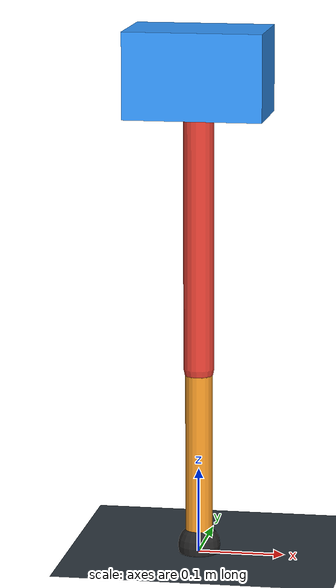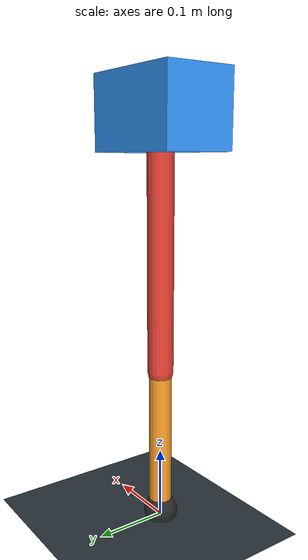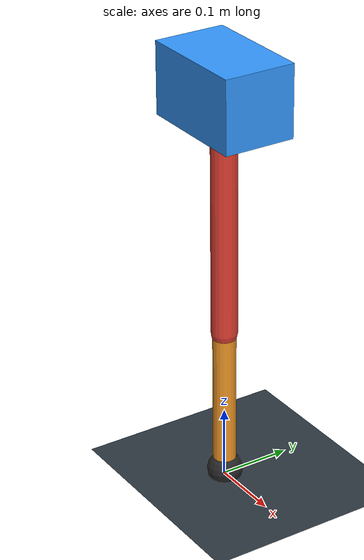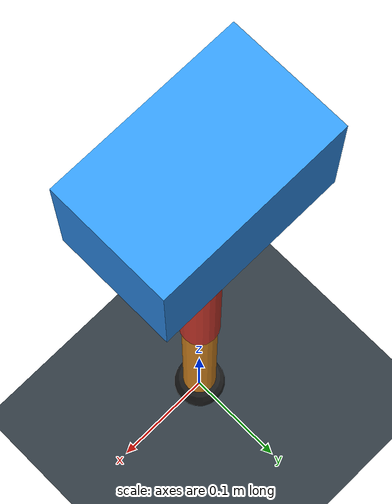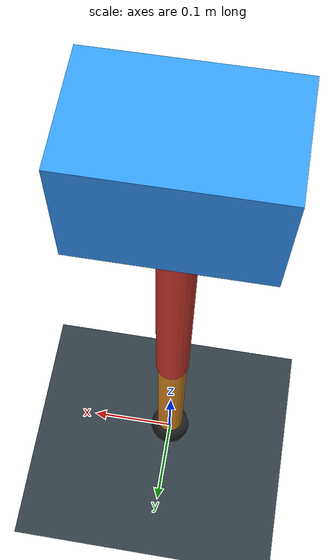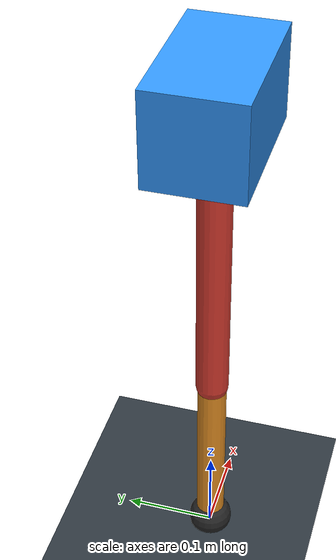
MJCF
<mujoco model="single_axis_two_bar">
  <compiler angle="radian" inertiafromgeom="true"/>
  <option timestep="0.001" integrator="implicitfast" gravity="0 0 -9.81"/>
  <default>
    <joint damping="0.08"/>
    <geom friction="1.2 0.01 0.0001" condim="3"/>
  </default>
  <worldbody>
    <geom name="floor" type="plane" size="5 5 0.1" rgba="0.18 0.22 0.25 1"/>
    <body name="carriage" pos="0 0 0.5672507648908632">
      <joint name="pole_slide" type="slide" axis="0 0 1"/>
      <geom name="payload" type="box" size="0.08 0.05 0.05" mass="3.1262635455842704" rgba="0.2 0.6 1 1"/>
      <body name="thigh" pos="0 0 0">
        <joint name="hip" type="hinge" axis="0 1 0"/>
        <geom name="thigh_link" type="capsule" fromto="0 0 0 0 0 -0.3465991033227074" size="0.018" mass="0.24695644102050204" rgba="0.9 0.25 0.2 1"/>
        <body name="shank" pos="0 0 -0.3465991033227074">
          <joint name="knee" type="hinge" axis="0 1 0"/>
          <geom name="shank_link" type="capsule" fromto="0 0 0 0 0 -0.21242230378127536" size="0.016" mass="0.15135369835725382" rgba="0.95 0.6 0.15 1"/>
          <geom name="foot" type="sphere" pos="0 0 -0.21242230378127536" size="0.025" mass="0.03" rgba="0.15 0.15 0.15 1"/>
          <site name="toe" pos="0 0 -0.21242230378127536" size="0.008"/>
        </body>
      </body>
    </body>
  </worldbody>
  <actuator>
    <motor name="hip_motor" joint="hip" ctrlrange="-33.73941577164979 33.73941577164979"/>
    <motor name="knee_motor" joint="knee" ctrlrange="-120.3343670819085 120.3343670819085"/>
  </actuator>
</mujoco>
